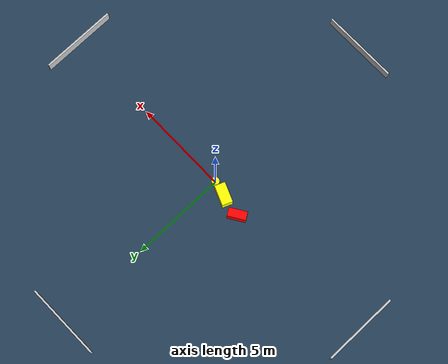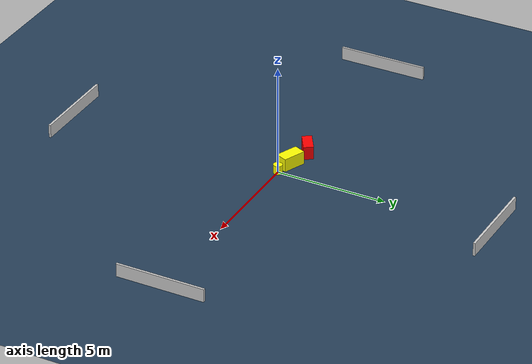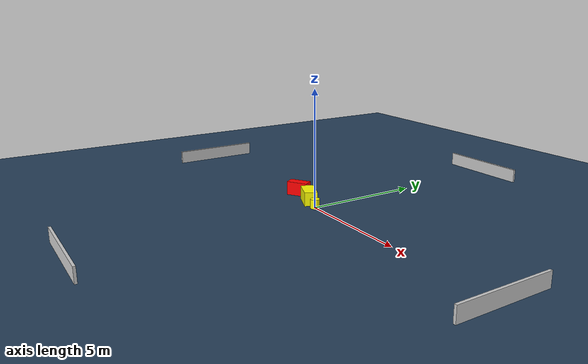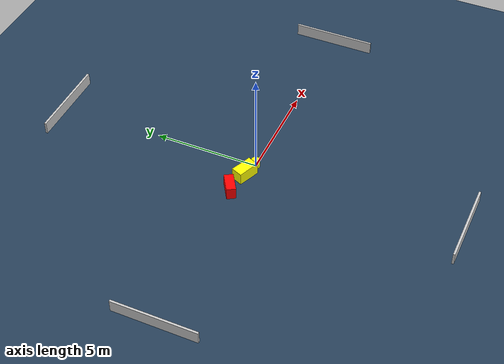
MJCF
<?xml version="1.0" ?>
<mujoco model="generated_environment">
  <option timestep="0.01" integrator="RK4" cone="elliptic"/>
  <default>
    <geom density="1"/>
  </default>
  <asset>
    <texture builtin="gradient" height="3072" name="skybox" rgb1="0.3 0.5 0.7" rgb2="0 0 0" type="skybox" width="512"/>
    <texture builtin="checker" height="300" name="groundplane" rgb1="0.2 0.3 0.4" rgb2="0.1 0.2 0.3" type="2d" width="300"/>
    <material name="groundplane" reflectance="0.2" texrepeat="5 5" texture="groundplane"/>
  </asset>
  <worldbody>
    <light dir="0 0 -1" directional="true" pos="0 0 1.5"/>
    <geom condim="3" friction="0.5 0.005 0.001" material="groundplane" name="floor" pos="0 0 0" size="0 0 0.05" type="plane"/>
    <body name="walls">
      <geom name="wall_1" condim="4" pos="-10.0 0.0 0.3" rgba="0.800000011920929 0.800000011920929 0.800000011920929 1.0" size="0.05 2.0 0.3" type="box"/>
      <geom name="wall_2" condim="4" pos="10.0 0.0 0.3" rgba="0.800000011920929 0.800000011920929 0.800000011920929 1.0" size="0.05 2.0 0.3" type="box"/>
      <geom name="wall_3" condim="4" pos="0.0 -10.0 0.3" rgba="0.800000011920929 0.800000011920929 0.800000011920929 1.0" size="2.0 0.05 0.3" type="box"/>
      <geom name="wall_4" condim="4" pos="0.0 10.0 0.3" rgba="0.800000011920929 0.800000011920929 0.800000011920929 1.0" size="2.0 0.05 0.3" type="box"/>
    </body>
    <body name="robot">
      <joint name="joint_x" type="slide" pos="0 0 0" axis="1 0 0"/>
      <joint name="joint_y" type="slide" pos="0 0 0" axis="0 1 0"/>
      <geom name="robot" type="cylinder" pos="0.0 0.0 0.2" size="0.2 0.2 0.0" mass="5.0" friction="1.0 0.005 0.0001" condim="4" rgba="1.0 1.0 0.0 1.0"/>
    </body>
    <body name="obstacle_1_movable">
      <geom name="obstacle_1_movable" condim="4" pos="-0.7765348559693285 0.18907744396153378 0.3" euler="0 0 247.62007687084852" friction="0.0 0.005 0.001" rgba="1.0 1.0 0.0 1.0" size="0.277627881398946 0.5253919505525754 0.3" type="box" mass="0.1"/>
      <joint type="free"/>
    </body>
    <body name="obstacle_2_static">
      <geom name="obstacle_2_static" condim="4" pos="-1.9544379580199223 0.395446785985786 0.3" euler="0 0 212.28637832439668" friction="0.0 0.005 0.001" rgba="1.0 0.0 0.0 1.0" size="0.4743926789840037 0.22129398401444209 0.3" type="box"/>
    </body>
  </worldbody>
  <actuator>
    <motor name="actuator_x" joint="joint_x" gear="1" ctrlrange="-1 1"/>
    <motor name="actuator_y" joint="joint_y" gear="1" ctrlrange="-1 1"/>
  </actuator>
</mujoco>
